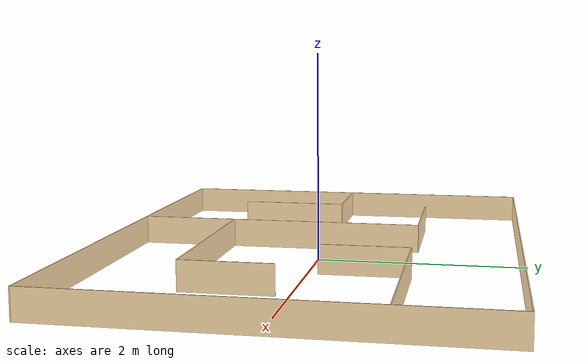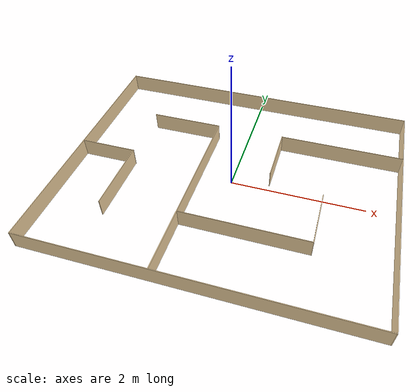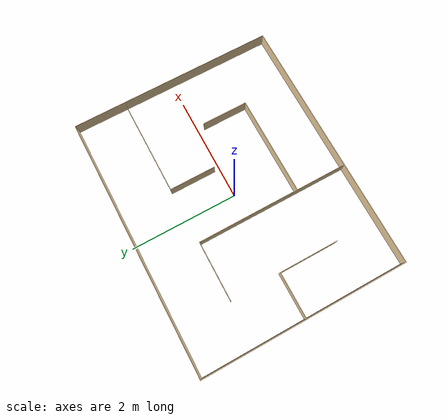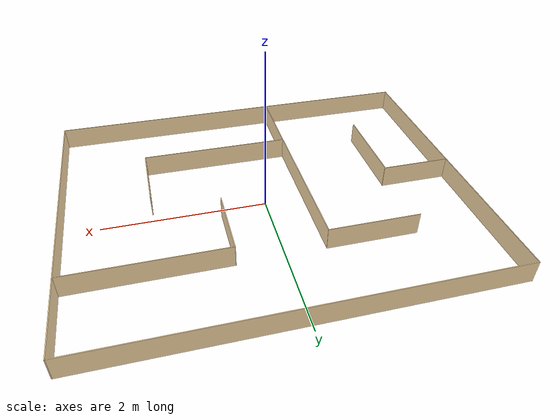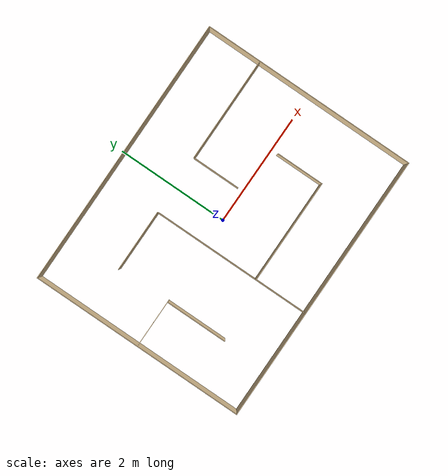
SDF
<?xml version='1.0'?>
<sdf version='1.6'>
  <model name='maze_5'>
    <link name='Wall_0'>
      <pose frame=''>0 1.925 0 0 -0 0</pose>
      <self_collide>0</self_collide>
      <kinematic>0</kinematic>
      <visual name='Wall_0_Visual'>
        <pose frame=''>0 0 0.14 0 -0 0</pose>
        <geometry>
          <box>
            <size>4.85998 0.01 0.28</size>
          </box>
        </geometry>
        <material>
          <script>
            <uri>file://media/materials/scripts/gazebo.material</uri>
            <name>Gazebo/Grey</name>
          </script>
          <ambient>0.921569 0.807843 0.615686 1</ambient>
          <diffuse>0.7 0.7 0.7 1</diffuse>
          <specular>0.01 0.01 0.01 1</specular>
          <emissive>0 0 0 1</emissive>
        </material>
        <cast_shadows>1</cast_shadows>
        <transparency>0</transparency>
      </visual>
      <collision name='Wall_0_Collision'>
        <laser_retro>0</laser_retro>
        <max_contacts>10</max_contacts>
        <pose frame=''>0 0 0.14 0 -0 0</pose>
        <geometry>
          <box>
            <size>4.85998 0.01 0.28</size>
          </box>
        </geometry>
        <surface>
          <friction>
            <ode>
              <mu>1</mu>
              <mu2>1</mu2>
              <fdir1>0 0 0</fdir1>
              <slip1>0</slip1>
              <slip2>0</slip2>
            </ode>
            <torsional>
              <coefficient>1</coefficient>
              <patch_radius>0</patch_radius>
              <surface_radius>0</surface_radius>
              <use_patch_radius>1</use_patch_radius>
              <ode>
                <slip>0</slip>
              </ode>
            </torsional>
          </friction>
          <bounce>
            <restitution_coefficient>0</restitution_coefficient>
            <threshold>1e+06</threshold>
          </bounce>
          <contact>
            <collide_without_contact>0</collide_without_contact>
            <collide_without_contact_bitmask>1</collide_without_contact_bitmask>
            <collide_bitmask>1</collide_bitmask>
            <ode>
              <soft_cfm>0</soft_cfm>
              <soft_erp>0.2</soft_erp>
              <kp>1e+13</kp>
              <kd>1</kd>
              <max_vel>0.01</max_vel>
              <min_depth>0</min_depth>
            </ode>
            <bullet>
              <split_impulse>1</split_impulse>
              <split_impulse_penetration_threshold>-0.01</split_impulse_penetration_threshold>
              <soft_cfm>0</soft_cfm>
              <soft_erp>0.2</soft_erp>
              <kp>1e+13</kp>
              <kd>1</kd>
            </bullet>
          </contact>
        </surface>
      </collision>
    </link>
    <link name='Wall_1'>
      <pose frame=''>2.425 0 0 0 0 -1.5708</pose>
      <self_collide>0</self_collide>
      <kinematic>0</kinematic>
      <visual name='Wall_1_Visual'>
        <pose frame=''>0 0 0.14 0 -0 0</pose>
        <geometry>
          <box>
            <size>3.86042 0.01 0.28</size>
          </box>
        </geometry>
        <material>
          <script>
            <uri>file://media/materials/scripts/gazebo.material</uri>
            <name>Gazebo/Grey</name>
          </script>
          <ambient>0.921569 0.807843 0.615686 1</ambient>
          <diffuse>0.7 0.7 0.7 1</diffuse>
          <specular>0.01 0.01 0.01 1</specular>
          <emissive>0 0 0 1</emissive>
        </material>
        <cast_shadows>1</cast_shadows>
        <transparency>0</transparency>
      </visual>
      <collision name='Wall_1_Collision'>
        <laser_retro>0</laser_retro>
        <max_contacts>10</max_contacts>
        <pose frame=''>0 0 0.14 0 -0 0</pose>
        <geometry>
          <box>
            <size>3.86042 0.01 0.28</size>
          </box>
        </geometry>
        <surface>
          <friction>
            <ode>
              <mu>1</mu>
              <mu2>1</mu2>
              <fdir1>0 0 0</fdir1>
              <slip1>0</slip1>
              <slip2>0</slip2>
            </ode>
            <torsional>
              <coefficient>1</coefficient>
              <patch_radius>0</patch_radius>
              <surface_radius>0</surface_radius>
              <use_patch_radius>1</use_patch_radius>
              <ode>
                <slip>0</slip>
              </ode>
            </torsional>
          </friction>
          <bounce>
            <restitution_coefficient>0</restitution_coefficient>
            <threshold>1e+06</threshold>
          </bounce>
          <contact>
            <collide_without_contact>0</collide_without_contact>
            <collide_without_contact_bitmask>1</collide_without_contact_bitmask>
            <collide_bitmask>1</collide_bitmask>
            <ode>
              <soft_cfm>0</soft_cfm>
              <soft_erp>0.2</soft_erp>
              <kp>1e+13</kp>
              <kd>1</kd>
              <max_vel>0.01</max_vel>
              <min_depth>0</min_depth>
            </ode>
            <bullet>
              <split_impulse>1</split_impulse>
              <split_impulse_penetration_threshold>-0.01</split_impulse_penetration_threshold>
              <soft_cfm>0</soft_cfm>
              <soft_erp>0.2</soft_erp>
              <kp>1e+13</kp>
              <kd>1</kd>
            </bullet>
          </contact>
        </surface>
      </collision>
    </link>
    <link name='Wall_11'>
      <pose frame=''>0.440529 -0.971 0 0 -0 0</pose>
      <self_collide>0</self_collide>
      <kinematic>0</kinematic>
      <visual name='Wall_11_Visual'>
        <pose frame=''>0 0 0.14 0 -0 0</pose>
        <geometry>
          <box>
            <size>1.86048 0.01 0.28</size>
          </box>
        </geometry>
        <material>
          <script>
            <uri>file://media/materials/scripts/gazebo.material</uri>
            <name>Gazebo/Grey</name>
          </script>
          <ambient>0.921569 0.807843 0.615686 1</ambient>
          <diffuse>0.7 0.7 0.7 1</diffuse>
          <specular>0.01 0.01 0.01 1</specular>
          <emissive>0 0 0 1</emissive>
        </material>
        <cast_shadows>1</cast_shadows>
        <transparency>0</transparency>
      </visual>
      <collision name='Wall_11_Collision'>
        <laser_retro>0</laser_retro>
        <max_contacts>10</max_contacts>
        <pose frame=''>0 0 0.14 0 -0 0</pose>
        <geometry>
          <box>
            <size>1.86048 0.01 0.28</size>
          </box>
        </geometry>
        <surface>
          <friction>
            <ode>
              <mu>1</mu>
              <mu2>1</mu2>
              <fdir1>0 0 0</fdir1>
              <slip1>0</slip1>
              <slip2>0</slip2>
            </ode>
            <torsional>
              <coefficient>1</coefficient>
              <patch_radius>0</patch_radius>
              <surface_radius>0</surface_radius>
              <use_patch_radius>1</use_patch_radius>
              <ode>
                <slip>0</slip>
              </ode>
            </torsional>
          </friction>
          <bounce>
            <restitution_coefficient>0</restitution_coefficient>
            <threshold>1e+06</threshold>
          </bounce>
          <contact>
            <collide_without_contact>0</collide_without_contact>
            <collide_without_contact_bitmask>1</collide_without_contact_bitmask>
            <collide_bitmask>1</collide_bitmask>
            <ode>
              <soft_cfm>0</soft_cfm>
              <soft_erp>0.2</soft_erp>
              <kp>1e+13</kp>
              <kd>1</kd>
              <max_vel>0.01</max_vel>
              <min_depth>0</min_depth>
            </ode>
            <bullet>
              <split_impulse>1</split_impulse>
              <split_impulse_penetration_threshold>-0.01</split_impulse_penetration_threshold>
              <soft_cfm>0</soft_cfm>
              <soft_erp>0.2</soft_erp>
              <kp>1e+13</kp>
              <kd>1</kd>
            </bullet>
          </contact>
        </surface>
      </collision>
    </link>
    <link name='Wall_12'>
      <pose frame=''>1.37309 -0.546 0 0 -0 1.5708</pose>
      <self_collide>0</self_collide>
      <kinematic>0</kinematic>
      <visual name='Wall_12_Visual'>
        <pose frame=''>0 0 0.14 0 -0 0</pose>
        <geometry>
          <box>
            <size>0.859674 0.01 0.28</size>
          </box>
        </geometry>
        <material>
          <script>
            <uri>file://media/materials/scripts/gazebo.material</uri>
            <name>Gazebo/Grey</name>
          </script>
          <ambient>0.921569 0.807843 0.615686 1</ambient>
          <diffuse>0.7 0.7 0.7 1</diffuse>
          <specular>0.01 0.01 0.01 1</specular>
          <emissive>0 0 0 1</emissive>
        </material>
        <cast_shadows>1</cast_shadows>
        <transparency>0</transparency>
      </visual>
      <collision name='Wall_12_Collision'>
        <laser_retro>0</laser_retro>
        <max_contacts>10</max_contacts>
        <pose frame=''>0 0 0.14 0 -0 0</pose>
        <geometry>
          <box>
            <size>0.859674 0.01 0.28</size>
          </box>
        </geometry>
        <surface>
          <friction>
            <ode>
              <mu>1</mu>
              <mu2>1</mu2>
              <fdir1>0 0 0</fdir1>
              <slip1>0</slip1>
              <slip2>0</slip2>
            </ode>
            <torsional>
              <coefficient>1</coefficient>
              <patch_radius>0</patch_radius>
              <surface_radius>0</surface_radius>
              <use_patch_radius>1</use_patch_radius>
              <ode>
                <slip>0</slip>
              </ode>
            </torsional>
          </friction>
          <bounce>
            <restitution_coefficient>0</restitution_coefficient>
            <threshold>1e+06</threshold>
          </bounce>
          <contact>
            <collide_without_contact>0</collide_without_contact>
            <collide_without_contact_bitmask>1</collide_without_contact_bitmask>
            <collide_bitmask>1</collide_bitmask>
            <ode>
              <soft_cfm>0</soft_cfm>
              <soft_erp>0.2</soft_erp>
              <kp>1e+13</kp>
              <kd>1</kd>
              <max_vel>0.01</max_vel>
              <min_depth>0</min_depth>
            </ode>
            <bullet>
              <split_impulse>1</split_impulse>
              <split_impulse_penetration_threshold>-0.01</split_impulse_penetration_threshold>
              <soft_cfm>0</soft_cfm>
              <soft_erp>0.2</soft_erp>
              <kp>1e+13</kp>
              <kd>1</kd>
            </bullet>
          </contact>
        </surface>
      </collision>
    </link>
    <link name='Wall_14'>
      <pose frame=''>1.49624 0.95 -0 0 -0 3.14159</pose>
      <self_collide>0</self_collide>
      <kinematic>0</kinematic>
      <visual name='Wall_14_Visual'>
        <pose frame=''>0 0 0.14 0 -0 0</pose>
        <geometry>
          <box>
            <size>1.85965 0.01 0.28</size>
          </box>
        </geometry>
        <material>
          <script>
            <uri>file://media/materials/scripts/gazebo.material</uri>
            <name>Gazebo/Grey</name>
          </script>
          <ambient>0.921569 0.807843 0.615686 1</ambient>
          <diffuse>0.7 0.7 0.7 1</diffuse>
          <specular>0.01 0.01 0.01 1</specular>
          <emissive>0 0 0 1</emissive>
        </material>
        <cast_shadows>1</cast_shadows>
        <transparency>0</transparency>
      </visual>
      <collision name='Wall_14_Collision'>
        <laser_retro>0</laser_retro>
        <max_contacts>10</max_contacts>
        <pose frame=''>0 0 0.14 0 -0 0</pose>
        <geometry>
          <box>
            <size>1.85965 0.01 0.28</size>
          </box>
        </geometry>
        <surface>
          <friction>
            <ode>
              <mu>1</mu>
              <mu2>1</mu2>
              <fdir1>0 0 0</fdir1>
              <slip1>0</slip1>
              <slip2>0</slip2>
            </ode>
            <torsional>
              <coefficient>1</coefficient>
              <patch_radius>0</patch_radius>
              <surface_radius>0</surface_radius>
              <use_patch_radius>1</use_patch_radius>
              <ode>
                <slip>0</slip>
              </ode>
            </torsional>
          </friction>
          <bounce>
            <restitution_coefficient>0</restitution_coefficient>
            <threshold>1e+06</threshold>
          </bounce>
          <contact>
            <collide_without_contact>0</collide_without_contact>
            <collide_without_contact_bitmask>1</collide_without_contact_bitmask>
            <collide_bitmask>1</collide_bitmask>
            <ode>
              <soft_cfm>0</soft_cfm>
              <soft_erp>0.2</soft_erp>
              <kp>1e+13</kp>
              <kd>1</kd>
              <max_vel>0.01</max_vel>
              <min_depth>0</min_depth>
            </ode>
            <bullet>
              <split_impulse>1</split_impulse>
              <split_impulse_penetration_threshold>-0.01</split_impulse_penetration_threshold>
              <soft_cfm>0</soft_cfm>
              <soft_erp>0.2</soft_erp>
              <kp>1e+13</kp>
              <kd>1</kd>
            </bullet>
          </contact>
        </surface>
      </collision>
    </link>
    <link name='Wall_15'>
      <pose frame=''>0.564901 0.525 0 0 0 -1.5708</pose>
      <self_collide>0</self_collide>
      <kinematic>0</kinematic>
      <visual name='Wall_15_Visual'>
        <pose frame=''>0 0 0.14 0 -0 0</pose>
        <geometry>
          <box>
            <size>0.859587 0.01 0.28</size>
          </box>
        </geometry>
        <material>
          <script>
            <uri>file://media/materials/scripts/gazebo.material</uri>
            <name>Gazebo/Grey</name>
          </script>
          <ambient>0.921569 0.807843 0.615686 1</ambient>
          <diffuse>0.7 0.7 0.7 1</diffuse>
          <specular>0.01 0.01 0.01 1</specular>
          <emissive>0 0 0 1</emissive>
        </material>
        <cast_shadows>1</cast_shadows>
        <transparency>0</transparency>
      </visual>
      <collision name='Wall_15_Collision'>
        <laser_retro>0</laser_retro>
        <max_contacts>10</max_contacts>
        <pose frame=''>0 0 0.14 0 -0 0</pose>
        <geometry>
          <box>
            <size>0.859587 0.01 0.28</size>
          </box>
        </geometry>
        <surface>
          <friction>
            <ode>
              <mu>1</mu>
              <mu2>1</mu2>
              <fdir1>0 0 0</fdir1>
              <slip1>0</slip1>
              <slip2>0</slip2>
            </ode>
            <torsional>
              <coefficient>1</coefficient>
              <patch_radius>0</patch_radius>
              <surface_radius>0</surface_radius>
              <use_patch_radius>1</use_patch_radius>
              <ode>
                <slip>0</slip>
              </ode>
            </torsional>
          </friction>
          <bounce>
            <restitution_coefficient>0</restitution_coefficient>
            <threshold>1e+06</threshold>
          </bounce>
          <contact>
            <collide_without_contact>0</collide_without_contact>
            <collide_without_contact_bitmask>1</collide_without_contact_bitmask>
            <collide_bitmask>1</collide_bitmask>
            <ode>
              <soft_cfm>0</soft_cfm>
              <soft_erp>0.2</soft_erp>
              <kp>1e+13</kp>
              <kd>1</kd>
              <max_vel>0.01</max_vel>
              <min_depth>0</min_depth>
            </ode>
            <bullet>
              <split_impulse>1</split_impulse>
              <split_impulse_penetration_threshold>-0.01</split_impulse_penetration_threshold>
              <soft_cfm>0</soft_cfm>
              <soft_erp>0.2</soft_erp>
              <kp>1e+13</kp>
              <kd>1</kd>
            </bullet>
          </contact>
        </surface>
      </collision>
    </link>
    <link name='Wall_2'>
      <pose frame=''>0 -1.925 0 0 -0 3.14159</pose>
      <self_collide>0</self_collide>
      <kinematic>0</kinematic>
      <visual name='Wall_2_Visual'>
        <pose frame=''>0 0 0.14 0 -0 0</pose>
        <geometry>
          <box>
            <size>4.86001 0.01 0.28</size>
          </box>
        </geometry>
        <material>
          <script>
            <uri>file://media/materials/scripts/gazebo.material</uri>
            <name>Gazebo/Grey</name>
          </script>
          <ambient>0.921569 0.807843 0.615686 1</ambient>
          <diffuse>0.7 0.7 0.7 1</diffuse>
          <specular>0.01 0.01 0.01 1</specular>
          <emissive>0 0 0 1</emissive>
        </material>
        <cast_shadows>1</cast_shadows>
        <transparency>0</transparency>
      </visual>
      <collision name='Wall_2_Collision'>
        <laser_retro>0</laser_retro>
        <max_contacts>10</max_contacts>
        <pose frame=''>0 0 0.14 0 -0 0</pose>
        <geometry>
          <box>
            <size>4.86001 0.01 0.28</size>
          </box>
        </geometry>
        <surface>
          <friction>
            <ode>
              <mu>1</mu>
              <mu2>1</mu2>
              <fdir1>0 0 0</fdir1>
              <slip1>0</slip1>
              <slip2>0</slip2>
            </ode>
            <torsional>
              <coefficient>1</coefficient>
              <patch_radius>0</patch_radius>
              <surface_radius>0</surface_radius>
              <use_patch_radius>1</use_patch_radius>
              <ode>
                <slip>0</slip>
              </ode>
            </torsional>
          </friction>
          <bounce>
            <restitution_coefficient>0</restitution_coefficient>
            <threshold>1e+06</threshold>
          </bounce>
          <contact>
            <collide_without_contact>0</collide_without_contact>
            <collide_without_contact_bitmask>1</collide_without_contact_bitmask>
            <collide_bitmask>1</collide_bitmask>
            <ode>
              <soft_cfm>0</soft_cfm>
              <soft_erp>0.2</soft_erp>
              <kp>1e+13</kp>
              <kd>1</kd>
              <max_vel>0.01</max_vel>
              <min_depth>0</min_depth>
            </ode>
            <bullet>
              <split_impulse>1</split_impulse>
              <split_impulse_penetration_threshold>-0.01</split_impulse_penetration_threshold>
              <soft_cfm>0</soft_cfm>
              <soft_erp>0.2</soft_erp>
              <kp>1e+13</kp>
              <kd>1</kd>
            </bullet>
          </contact>
        </surface>
      </collision>
    </link>
    <link name='Wall_3'>
      <pose frame=''>-2.425 0 0 0 -0 1.5708</pose>
      <self_collide>0</self_collide>
      <kinematic>0</kinematic>
      <visual name='Wall_3_Visual'>
        <pose frame=''>0 0 0.14 0 -0 0</pose>
        <geometry>
          <box>
            <size>3.86 0.01 0.28</size>
          </box>
        </geometry>
        <material>
          <script>
            <uri>file://media/materials/scripts/gazebo.material</uri>
            <name>Gazebo/Grey</name>
          </script>
          <ambient>0.921569 0.807843 0.615686 1</ambient>
          <diffuse>0.7 0.7 0.7 1</diffuse>
          <specular>0.01 0.01 0.01 1</specular>
          <emissive>0 0 0 1</emissive>
        </material>
        <cast_shadows>1</cast_shadows>
        <transparency>0</transparency>
      </visual>
      <collision name='Wall_3_Collision'>
        <laser_retro>0</laser_retro>
        <max_contacts>10</max_contacts>
        <pose frame=''>0 0 0.14 0 -0 0</pose>
        <geometry>
          <box>
            <size>3.86 0.01 0.28</size>
          </box>
        </geometry>
        <surface>
          <friction>
            <ode>
              <mu>1</mu>
              <mu2>1</mu2>
              <fdir1>0 0 0</fdir1>
              <slip1>0</slip1>
              <slip2>0</slip2>
            </ode>
            <torsional>
              <coefficient>1</coefficient>
              <patch_radius>0</patch_radius>
              <surface_radius>0</surface_radius>
              <use_patch_radius>1</use_patch_radius>
              <ode>
                <slip>0</slip>
              </ode>
            </torsional>
          </friction>
          <bounce>
            <restitution_coefficient>0</restitution_coefficient>
            <threshold>1e+06</threshold>
          </bounce>
          <contact>
            <collide_without_contact>0</collide_without_contact>
            <collide_without_contact_bitmask>1</collide_without_contact_bitmask>
            <collide_bitmask>1</collide_bitmask>
            <ode>
              <soft_cfm>0</soft_cfm>
              <soft_erp>0.2</soft_erp>
              <kp>1e+13</kp>
              <kd>1</kd>
              <max_vel>0.01</max_vel>
              <min_depth>0</min_depth>
            </ode>
            <bullet>
              <split_impulse>1</split_impulse>
              <split_impulse_penetration_threshold>-0.01</split_impulse_penetration_threshold>
              <soft_cfm>0</soft_cfm>
              <soft_erp>0.2</soft_erp>
              <kp>1e+13</kp>
              <kd>1</kd>
            </bullet>
          </contact>
        </surface>
      </collision>
    </link>
    <link name='Wall_5'>
      <pose frame=''>-1.99662 -0.006 0 0 -0 0</pose>
      <self_collide>0</self_collide>
      <kinematic>0</kinematic>
      <visual name='Wall_5_Visual'>
        <pose frame=''>0 0 0.14 0 -0 0</pose>
        <geometry>
          <box>
            <size>0.860348 0.01 0.28</size>
          </box>
        </geometry>
        <material>
          <script>
            <uri>file://media/materials/scripts/gazebo.material</uri>
            <name>Gazebo/Grey</name>
          </script>
          <ambient>0.921569 0.807843 0.615686 1</ambient>
          <diffuse>0.7 0.7 0.7 1</diffuse>
          <specular>0.01 0.01 0.01 1</specular>
          <emissive>0 0 0 1</emissive>
        </material>
        <cast_shadows>1</cast_shadows>
        <transparency>0</transparency>
      </visual>
      <collision name='Wall_5_Collision'>
        <laser_retro>0</laser_retro>
        <max_contacts>10</max_contacts>
        <pose frame=''>0 0 0.14 0 -0 0</pose>
        <geometry>
          <box>
            <size>0.860348 0.01 0.28</size>
          </box>
        </geometry>
        <surface>
          <friction>
            <ode>
              <mu>1</mu>
              <mu2>1</mu2>
              <fdir1>0 0 0</fdir1>
              <slip1>0</slip1>
              <slip2>0</slip2>
            </ode>
            <torsional>
              <coefficient>1</coefficient>
              <patch_radius>0</patch_radius>
              <surface_radius>0</surface_radius>
              <use_patch_radius>1</use_patch_radius>
              <ode>
                <slip>0</slip>
              </ode>
            </torsional>
          </friction>
          <bounce>
            <restitution_coefficient>0</restitution_coefficient>
            <threshold>1e+06</threshold>
          </bounce>
          <contact>
            <collide_without_contact>0</collide_without_contact>
            <collide_without_contact_bitmask>1</collide_without_contact_bitmask>
            <collide_bitmask>1</collide_bitmask>
            <ode>
              <soft_cfm>0</soft_cfm>
              <soft_erp>0.2</soft_erp>
              <kp>1e+13</kp>
              <kd>1</kd>
              <max_vel>0.01</max_vel>
              <min_depth>0</min_depth>
            </ode>
            <bullet>
              <split_impulse>1</split_impulse>
              <split_impulse_penetration_threshold>-0.01</split_impulse_penetration_threshold>
              <soft_cfm>0</soft_cfm>
              <soft_erp>0.2</soft_erp>
              <kp>1e+13</kp>
              <kd>1</kd>
            </bullet>
          </contact>
        </surface>
      </collision>
    </link>
    <link name='Wall_6'>
      <pose frame=''>-1.57339 -0.557219 0 0 0 -1.5708</pose>
      <self_collide>0</self_collide>
      <kinematic>0</kinematic>
      <visual name='Wall_6_Visual'>
        <pose frame=''>0 0 0.14 0 -0 0</pose>
        <geometry>
          <box>
            <size>1.11011 0.01 0.28</size>
          </box>
        </geometry>
        <material>
          <script>
            <uri>file://media/materials/scripts/gazebo.material</uri>
            <name>Gazebo/Grey</name>
          </script>
          <ambient>0.921569 0.807843 0.615686 1</ambient>
          <diffuse>0.7 0.7 0.7 1</diffuse>
          <specular>0.01 0.01 0.01 1</specular>
          <emissive>0 0 0 1</emissive>
        </material>
        <cast_shadows>1</cast_shadows>
        <transparency>0</transparency>
      </visual>
      <collision name='Wall_6_Collision'>
        <laser_retro>0</laser_retro>
        <max_contacts>10</max_contacts>
        <pose frame=''>0 0 0.14 0 -0 0</pose>
        <geometry>
          <box>
            <size>1.11011 0.01 0.28</size>
          </box>
        </geometry>
        <surface>
          <friction>
            <ode>
              <mu>1</mu>
              <mu2>1</mu2>
              <fdir1>0 0 0</fdir1>
              <slip1>0</slip1>
              <slip2>0</slip2>
            </ode>
            <torsional>
              <coefficient>1</coefficient>
              <patch_radius>0</patch_radius>
              <surface_radius>0</surface_radius>
              <use_patch_radius>1</use_patch_radius>
              <ode>
                <slip>0</slip>
              </ode>
            </torsional>
          </friction>
          <bounce>
            <restitution_coefficient>0</restitution_coefficient>
            <threshold>1e+06</threshold>
          </bounce>
          <contact>
            <collide_without_contact>0</collide_without_contact>
            <collide_without_contact_bitmask>1</collide_without_contact_bitmask>
            <collide_bitmask>1</collide_bitmask>
            <ode>
              <soft_cfm>0</soft_cfm>
              <soft_erp>0.2</soft_erp>
              <kp>1e+13</kp>
              <kd>1</kd>
              <max_vel>0.01</max_vel>
              <min_depth>0</min_depth>
            </ode>
            <bullet>
              <split_impulse>1</split_impulse>
              <split_impulse_penetration_threshold>-0.01</split_impulse_penetration_threshold>
              <soft_cfm>0</soft_cfm>
              <soft_erp>0.2</soft_erp>
              <kp>1e+13</kp>
              <kd>1</kd>
            </bullet>
          </contact>
        </surface>
      </collision>
    </link>
    <link name='Wall_8'>
      <pose frame=''>-0.487 -0.495986 -0 0 -0 1.5708</pose>
      <self_collide>0</self_collide>
      <kinematic>0</kinematic>
      <visual name='Wall_8_Visual'>
        <pose frame=''>0 0 0.14 0 -0 0</pose>
        <geometry>
          <box>
            <size>2.86 0.01 0.28</size>
          </box>
        </geometry>
        <material>
          <script>
            <uri>file://media/materials/scripts/gazebo.material</uri>
            <name>Gazebo/Grey</name>
          </script>
          <ambient>0.921569 0.807843 0.615686 1</ambient>
          <diffuse>0.7 0.7 0.7 1</diffuse>
          <specular>0.01 0.01 0.01 1</specular>
          <emissive>0 0 0 1</emissive>
        </material>
        <cast_shadows>1</cast_shadows>
        <transparency>0</transparency>
      </visual>
      <collision name='Wall_8_Collision'>
        <laser_retro>0</laser_retro>
        <max_contacts>10</max_contacts>
        <pose frame=''>0 0 0.14 0 -0 0</pose>
        <geometry>
          <box>
            <size>2.86 0.01 0.28</size>
          </box>
        </geometry>
        <surface>
          <friction>
            <ode>
              <mu>1</mu>
              <mu2>1</mu2>
              <fdir1>0 0 0</fdir1>
              <slip1>0</slip1>
              <slip2>0</slip2>
            </ode>
            <torsional>
              <coefficient>1</coefficient>
              <patch_radius>0</patch_radius>
              <surface_radius>0</surface_radius>
              <use_patch_radius>1</use_patch_radius>
              <ode>
                <slip>0</slip>
              </ode>
            </torsional>
          </friction>
          <bounce>
            <restitution_coefficient>0</restitution_coefficient>
            <threshold>1e+06</threshold>
          </bounce>
          <contact>
            <collide_without_contact>0</collide_without_contact>
            <collide_without_contact_bitmask>1</collide_without_contact_bitmask>
            <collide_bitmask>1</collide_bitmask>
            <ode>
              <soft_cfm>0</soft_cfm>
              <soft_erp>0.2</soft_erp>
              <kp>1e+13</kp>
              <kd>1</kd>
              <max_vel>0.01</max_vel>
              <min_depth>0</min_depth>
            </ode>
            <bullet>
              <split_impulse>1</split_impulse>
              <split_impulse_penetration_threshold>-0.01</split_impulse_penetration_threshold>
              <soft_cfm>0</soft_cfm>
              <soft_erp>0.2</soft_erp>
              <kp>1e+13</kp>
              <kd>1</kd>
            </bullet>
          </contact>
        </surface>
      </collision>
    </link>
    <link name='Wall_9'>
      <pose frame=''>-1.037 0.934393 0 0 -0 3.14159</pose>
      <self_collide>0</self_collide>
      <kinematic>0</kinematic>
      <visual name='Wall_9_Visual'>
        <pose frame=''>0 0 0.14 0 -0 0</pose>
        <geometry>
          <box>
            <size>1.10991 0.01 0.28</size>
          </box>
        </geometry>
        <material>
          <script>
            <uri>file://media/materials/scripts/gazebo.material</uri>
            <name>Gazebo/Grey</name>
          </script>
          <ambient>0.921569 0.807843 0.615686 1</ambient>
          <diffuse>0.7 0.7 0.7 1</diffuse>
          <specular>0.01 0.01 0.01 1</specular>
          <emissive>0 0 0 1</emissive>
        </material>
        <cast_shadows>1</cast_shadows>
        <transparency>0</transparency>
      </visual>
      <collision name='Wall_9_Collision'>
        <laser_retro>0</laser_retro>
        <max_contacts>10</max_contacts>
        <pose frame=''>0 0 0.14 0 -0 0</pose>
        <geometry>
          <box>
            <size>1.10991 0.01 0.28</size>
          </box>
        </geometry>
        <surface>
          <friction>
            <ode>
              <mu>1</mu>
              <mu2>1</mu2>
              <fdir1>0 0 0</fdir1>
              <slip1>0</slip1>
              <slip2>0</slip2>
            </ode>
            <torsional>
              <coefficient>1</coefficient>
              <patch_radius>0</patch_radius>
              <surface_radius>0</surface_radius>
              <use_patch_radius>1</use_patch_radius>
              <ode>
                <slip>0</slip>
              </ode>
            </torsional>
          </friction>
          <bounce>
            <restitution_coefficient>0</restitution_coefficient>
            <threshold>1e+06</threshold>
          </bounce>
          <contact>
            <collide_without_contact>0</collide_without_contact>
            <collide_without_contact_bitmask>1</collide_without_contact_bitmask>
            <collide_bitmask>1</collide_bitmask>
            <ode>
              <soft_cfm>0</soft_cfm>
              <soft_erp>0.2</soft_erp>
              <kp>1e+13</kp>
              <kd>1</kd>
              <max_vel>0.01</max_vel>
              <min_depth>0</min_depth>
            </ode>
            <bullet>
              <split_impulse>1</split_impulse>
              <split_impulse_penetration_threshold>-0.01</split_impulse_penetration_threshold>
              <soft_cfm>0</soft_cfm>
              <soft_erp>0.2</soft_erp>
              <kp>1e+13</kp>
              <kd>1</kd>
            </bullet>
          </contact>
        </surface>
      </collision>
    </link>
    <static>1</static>
    <allow_auto_disable>1</allow_auto_disable>
  </model>
</sdf>
